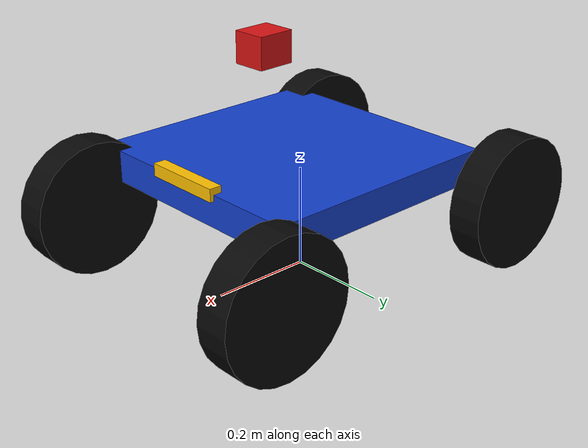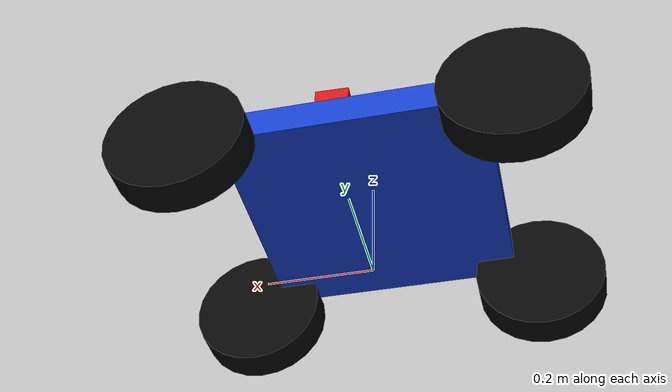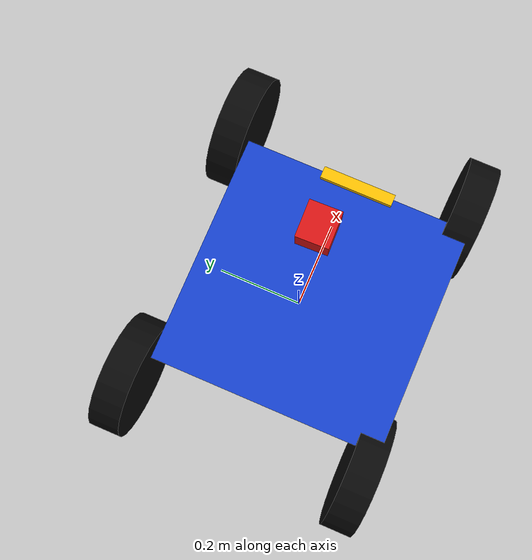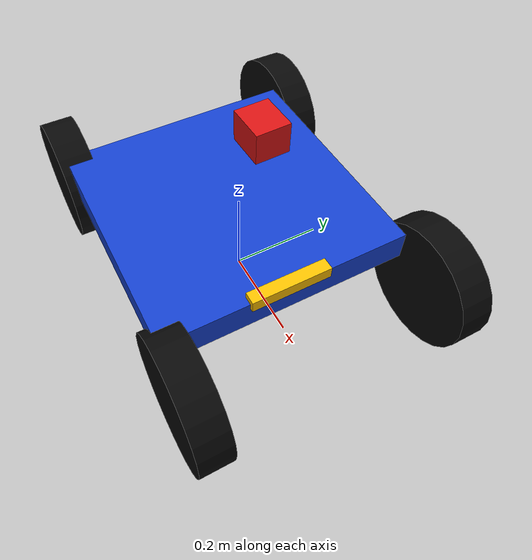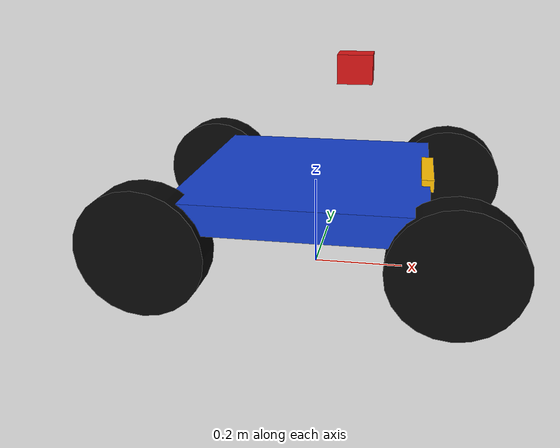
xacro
<?xml version="1.0"?>
<robot xmlns:xacro="http://www.ros.org/wiki/xacro" name="culvert_inspection_robot">

    <xacro:property name="wheel_radius" value="0.1315"/>
    <xacro:property name="wheel_width" value="0.0680"/>
    <xacro:property name="wheel_x" value="0.3002"/>
    <xacro:property name="wheel_y" value="0.2640"/>
    <xacro:property name="base_link_height" value="${wheel_radius}"/>

    <xacro:property name="chassis_x" value="0.5000"/>
    <xacro:property name="chassis_y" value="0.5036"/>
    <xacro:property name="chassis_z" value="0.0630"/>
    <xacro:property name="chassis_origin_x" value="-0.00013"/>
    <xacro:property name="chassis_origin_y" value="-0.02936"/>
    <xacro:property name="chassis_origin_z" value="0.07282"/>

    <xacro:property name="livox_x" value="0.08104"/>
    <xacro:property name="livox_y" value="-0.00245"/>
    <xacro:property name="livox_z" value="0.33932"/>
    <xacro:property name="livox_yaw" value="${pi + 0.02860}"/>

    <material name="chassis_blue">
        <color rgba="0.08 0.25 0.80 1.0"/>
    </material>
    <material name="wheel_black">
        <color rgba="0.03 0.03 0.03 1.0"/>
    </material>
    <material name="livox_red">
        <color rgba="0.85 0.08 0.08 1.0"/>
    </material>
    <material name="cad_x_yellow">
        <color rgba="1.0 0.75 0.0 1.0"/>
    </material>

    <link name="base_footprint"/>

    <link name="base_link">
        <visual name="chassis">
            <origin
                xyz="${chassis_origin_x} ${chassis_origin_y} ${chassis_origin_z}"
                rpy="0 0 0"/>
            <geometry>
                <box size="${chassis_x} ${chassis_y} ${chassis_z}"/>
            </geometry>
            <material name="chassis_blue"/>
        </visual>
        <!-- Marks CAD / base_link +x (assembled vehicle tail). -->
        <visual name="cad_x_indicator">
            <origin xyz="0.245 -0.02936 0.105" rpy="0 0 0"/>
            <geometry>
                <box size="0.025 0.16 0.025"/>
            </geometry>
            <material name="cad_x_yellow"/>
        </visual>
        <collision>
            <origin
                xyz="${chassis_origin_x} ${chassis_origin_y} ${chassis_origin_z}"
                rpy="0 0 0"/>
            <geometry>
                <box size="${chassis_x} ${chassis_y} ${chassis_z}"/>
            </geometry>
        </collision>
    </link>

    <joint name="base_footprint_to_base_link" type="fixed">
        <parent link="base_footprint"/>
        <child link="base_link"/>
        <origin xyz="0 0 ${base_link_height}" rpy="0 0 0"/>
    </joint>

    <xacro:macro name="wheel" params="prefix x y">
        <link name="${prefix}_wheel_link">
            <visual>
                <!-- A URDF cylinder points along z; rotate it so its axle is y. -->
                <origin xyz="0 0 0" rpy="${pi / 2} 0 0"/>
                <geometry>
                    <cylinder radius="${wheel_radius}" length="${wheel_width}"/>
                </geometry>
                <material name="wheel_black"/>
            </visual>
            <collision>
                <origin xyz="0 0 0" rpy="${pi / 2} 0 0"/>
                <geometry>
                    <cylinder radius="${wheel_radius}" length="${wheel_width}"/>
                </geometry>
            </collision>
        </link>
        <joint name="${prefix}_wheel_joint" type="continuous">
            <parent link="base_link"/>
            <child link="${prefix}_wheel_link"/>
            <origin xyz="${x} ${y} 0" rpy="0 0 0"/>
            <axis xyz="0 1 0"/>
            <limit effort="50" velocity="50"/>
        </joint>
    </xacro:macro>

    <xacro:wheel prefix="front_left" x="${wheel_x}" y="${wheel_y}"/>
    <xacro:wheel prefix="front_right" x="${wheel_x}" y="${-wheel_y}"/>
    <xacro:wheel prefix="rear_left" x="${-wheel_x}" y="${wheel_y}"/>
    <xacro:wheel prefix="rear_right" x="${-wheel_x}" y="${-wheel_y}"/>

    <!-- Mid360 link origin is the official point-cloud origin O. -->
    <link name="livox_frame">
        <visual>
            <!-- The body center is approximately 17 mm below point-cloud O. -->
            <origin xyz="-0.004 0 -0.017" rpy="0 0 0"/>
            <geometry>
                <box size="0.073 0.065 0.060"/>
            </geometry>
            <material name="livox_red"/>
        </visual>
        <collision>
            <origin xyz="-0.004 0 -0.017" rpy="0 0 0"/>
            <geometry>
                <box size="0.073 0.065 0.060"/>
            </geometry>
        </collision>
    </link>

    <joint name="base_to_livox" type="fixed">
        <parent link="base_link"/>
        <child link="livox_frame"/>
        <origin xyz="${livox_x} ${livox_y} ${livox_z}" rpy="0 0 ${livox_yaw}"/>
    </joint>
</robot>
